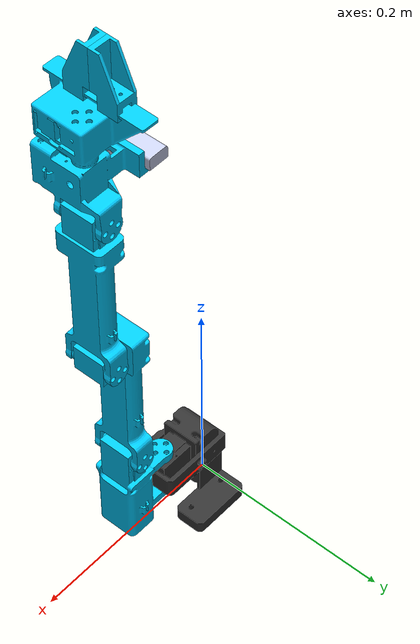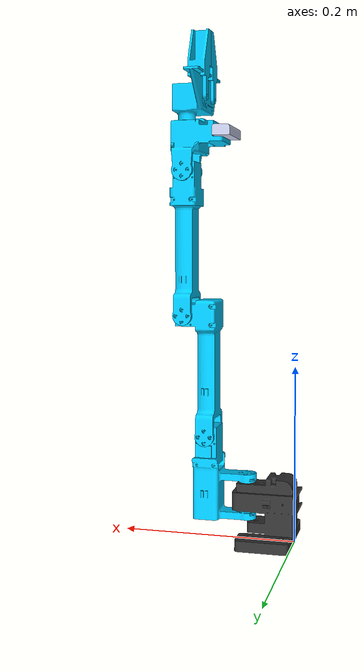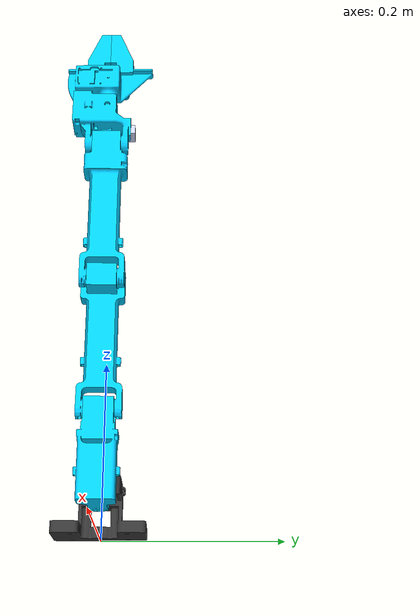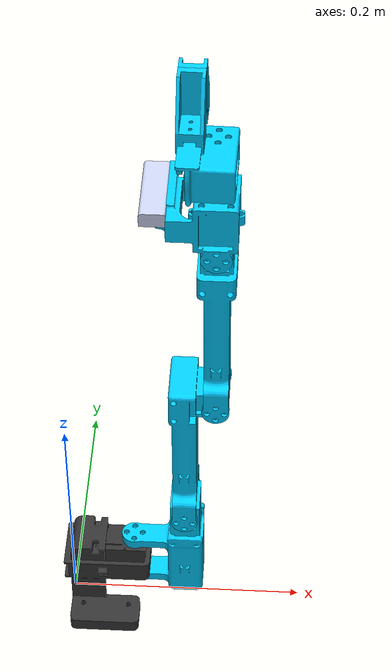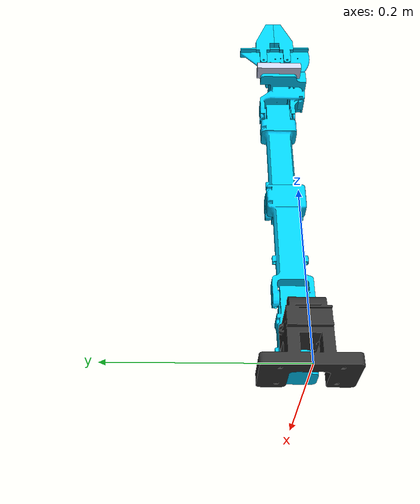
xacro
<?xml version="1.0"?>
<robot xmlns:xacro="http://www.ros.org/wiki/xacro" name="my_robot">
    <xacro:arg name="initial_positions_file" default="initial_positions.yaml" />
    <xacro:arg name="use_mock" default="true" />
    <xacro:arg name="serial_port" default="/dev/ttyUSB0" />

    <!-- Import my_robot urdf file -->
    <xacro:include filename="$(find star_arm)/urdf/star_arm.urdf.xacro" />

    <!-- Import control_xacro -->
    <xacro:include filename="my_robot.ros2_control.xacro" />

    <xacro:my_robot_ros2_control
        name="RealSystem"
        initial_positions_file="$(arg initial_positions_file)"
        use_mock="$(arg use_mock)"
        serial_port="$(arg serial_port)"/>

</robot>

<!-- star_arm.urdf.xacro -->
<robot name="my_robot" xmlns:xacro="http://www.ros.org/wiki/xacro">

  <xacro:include filename="star_arm.urdf"/>

  <xacro:property name="gripper_tcp_forward" value="0.048"/>
  <xacro:property name="optical_frame_roll" value="-1.57079632679"/>
  <xacro:property name="optical_frame_pitch" value="0.0"/>
  <xacro:property name="optical_frame_yaw" value="-1.57079632679"/>

  <!-- RealSense D435i frame aliases under the CAD camera_link mount. -->
  <link name="camera_depth_frame"/>
  <joint name="camera_depth_frame_joint" type="fixed">
    <origin xyz="0 0 0" rpy="0 0 0"/>
    <parent link="camera_link"/>
    <child link="camera_depth_frame"/>
  </joint>

  <link name="camera_depth_optical_frame"/>
  <joint name="camera_depth_optical_joint" type="fixed">
    <origin
      xyz="0 0 0"
      rpy="${optical_frame_roll} ${optical_frame_pitch} ${optical_frame_yaw}"/>
    <parent link="camera_depth_frame"/>
    <child link="camera_depth_optical_frame"/>
  </joint>

  <link name="camera_color_frame"/>
  <joint name="camera_color_frame_joint" type="fixed">
    <origin xyz="0 0 0" rpy="0 0 0"/>
    <parent link="camera_link"/>
    <child link="camera_color_frame"/>
  </joint>

  <link name="camera_color_optical_frame"/>
  <joint name="camera_color_optical_joint" type="fixed">
    <origin
      xyz="0 0 0"
      rpy="${optical_frame_roll} ${optical_frame_pitch} ${optical_frame_yaw}"/>
    <parent link="camera_color_frame"/>
    <child link="camera_color_optical_frame"/>
  </joint>

  <link name="gripper_center_link"/>
  <joint name="gripper_center_fixed_joint" type="fixed">
    <!-- Position = midpoint of end_joint1/end_joint2 origins in link5. -->
    <origin xyz="0 -0.0185 0.051" rpy="0 -1.5708 -1.5708"/>
    <parent link="link5"/>
    <child link="gripper_center_link"/>
  </joint>

  <link name="tcp_link"/>
  <joint name="tcp_fixed_joint" type="fixed">
    <!-- TCP goes forward along gripper_center +X (equivalent to link5 +Z). -->
    <origin xyz="${gripper_tcp_forward} 0 0" rpy="0 0 0"/>
    <parent link="gripper_center_link"/>
    <child link="tcp_link"/>
  </joint>

</robot>

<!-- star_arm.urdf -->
<robot name="star_arm">
  <material name="base_gray">
    <color rgba="0.2 0.2 0.2 1" />
  </material>
  <material name="arm_cyan">
    <color rgba="0.0 0.8 1.0 1" />
  </material>
  <link
    name="base_link">
    <inertial>
      <origin
        xyz="0.0275864586435609 9.16647477805559E-05 0.0324590456139455"
        rpy="0 0 0" />
      <mass
        value="0.144504554281563" />
      <inertia
        ixx="0.000121778576211421"
        ixy="4.84539490144028E-07"
        ixz="1.008250680684E-05"
        iyy="8.91115266351561E-05"
        iyz="-3.49729533338273E-12"
        izz="0.000111457566341753" />
    </inertial>
    <visual>
      <origin
        xyz="0 0 0"
        rpy="0 0 0" />
      <geometry>
        <mesh
          filename="package://star_arm/meshes/base_link.STL" />
      </geometry>
      <material
        name="base_gray">
        <color
          rgba="0.2 0.2 0.2 1" />
      </material>
    </visual>
    <collision>
      <origin
        xyz="0 0 0"
        rpy="0 0 0" />
      <geometry>
        <mesh
          filename="package://star_arm/meshes/base_link.STL" />
      </geometry>
    </collision>
  </link>
  <link
    name="link1">
    <inertial>
      <origin
        xyz="1.3453252855906E-05 0.0413059005151624 -0.0368213823397828"
        rpy="0 0 0" />
      <mass
        value="0.119500015084103" />
      <inertia
        ixx="5.33919609666398E-05"
        ixy="-5.49525330310466E-08"
        ixz="-1.15729775390099E-07"
        iyy="4.7549033361238E-05"
        iyz="1.19946244949578E-06"
        izz="3.30906436971184E-05" />
    </inertial>
    <visual>
      <origin
        xyz="0 0 0"
        rpy="0 0 0" />
      <geometry>
        <mesh
          filename="package://star_arm/meshes/link1.STL" />
      </geometry>
      <material
        name="arm_cyan">
        <color
          rgba="0.0 0.8 1.0 1" />
      </material>
    </visual>
    <collision>
      <origin
        xyz="0 0 0"
        rpy="0 0 0" />
      <geometry>
        <mesh
          filename="package://star_arm/meshes/link1.STL" />
      </geometry>
    </collision>
  </link>
  <joint
    name="joint1"
    type="revolute">
    <origin
      xyz="0.0552 0 0.03275"
      rpy="-3.1416 0 1.5708" />
    <parent
      link="base_link" />
    <child
      link="link1" />
    <axis
      xyz="0 0 -1" />
    <limit
      lower="-1.60"
      upper="1.60"
      effort="100"
      velocity="1" />
  </joint>
  <link
    name="link2">
    <inertial>
      <origin
        xyz="-0.00335921384804032 0.0945816679704448 0.0174068208732643"
        rpy="0 0 0" />
      <mass
        value="0.130914564240808" />
      <inertia
        ixx="0.00018510366056365"
        ixy="-2.57165620985463E-06"
        ixz="1.62336294405518E-07"
        iyy="2.69950008420773E-05"
        iyz="-8.45473246439525E-07"
        izz="0.00017706366922862" />
    </inertial>
    <visual>
      <origin
        xyz="0 0 0"
        rpy="0 0 0" />
      <geometry>
        <mesh
          filename="package://star_arm/meshes/link2.STL" />
      </geometry>
      <material
        name="arm_cyan">
        <color
          rgba="0.0 0.8 1.0 1" />
      </material>
    </visual>
    <collision>
      <origin
        xyz="0 0 0"
        rpy="0 0 0" />
      <geometry>
        <mesh
          filename="package://star_arm/meshes/link2.STL" />
      </geometry>
    </collision>
  </link>
  <joint
    name="joint2"
    type="revolute">
    <origin
      xyz="-0.01725 0.045 -0.087"
      rpy="-1.5708 0 -1.5708" />
    <parent
      link="link1" />
    <child
      link="link2" />
    <axis
      xyz="0 0 1" />
    <limit
      lower="-1.75"
      upper="1.75"
      effort="100"
      velocity="1" />
  </joint>
  <link
    name="link3">
    <inertial>
      <origin
        xyz="1.16788708870719E-05 0.0977016302020788 0.0172734290636942"
        rpy="0 0 0" />
      <mass
        value="0.130589042948412" />
      <inertia
        ixx="0.000172650242860473"
        ixy="1.25703414938938E-07"
        ixz="-3.67980725389453E-11"
        iyy="2.27248998780146E-05"
        iyz="1.80392268951775E-07"
        izz="0.000161491051520502" />
    </inertial>
    <visual>
      <origin
        xyz="0 0 0"
        rpy="0 0 0" />
      <geometry>
        <mesh
          filename="package://star_arm/meshes/link3.STL" />
      </geometry>
      <material
        name="arm_cyan">
        <color
          rgba="0.0 0.8 1.0 1" />
      </material>
    </visual>
    <collision>
      <origin
        xyz="0 0 0"
        rpy="0 0 0" />
      <geometry>
        <mesh
          filename="package://star_arm/meshes/link3.STL" />
      </geometry>
    </collision>
  </link>
  <joint
    name="joint3"
    type="revolute">
    <origin
      xyz="-0.026 0.1375 0"
      rpy="0 0 0" />
    <parent
      link="link2" />
    <child
      link="link3" />
    <axis
      xyz="0 0 1" />
    <limit
      lower="0"
      upper="3.00"
      effort="100"
      velocity="1" />
  </joint>
  <link
    name="link4">
    <inertial>
      <origin
        xyz="0.00631217454440636 0.0365391714692126 0.00623188114836135"
        rpy="0 0 0" />
      <mass
        value="0.0832632385047992" />
      <inertia
        ixx="3.70113589000222E-05"
        ixy="-3.43933921249897E-06"
        ixz="-1.08273760441399E-06"
        iyy="3.94373023103334E-05"
        iyz="3.88851296896288E-06"
        izz="3.23648386666315E-05" />
    </inertial>
    <visual>
      <origin
        xyz="0 0 0"
        rpy="0 0 0" />
      <geometry>
        <mesh
          filename="package://star_arm/meshes/link4.STL" />
      </geometry>
      <material
        name="arm_cyan">
        <color
          rgba="0.0 0.8 1.0 1" />
      </material>
    </visual>
    <collision>
      <origin
        xyz="0 0 0"
        rpy="0 0 0" />
      <geometry>
        <mesh
          filename="package://star_arm/meshes/link4.STL" />
      </geometry>
    </collision>
  </link>
  <joint
    name="joint4"
    type="revolute">
    <origin
      xyz="0 0.165 0"
      rpy="0 0 0" />
    <parent
      link="link3" />
    <child
      link="link4" />
    <axis
      xyz="0 0 1" />
    <limit
      lower="-1.75"
      upper="1.75"
      effort="100"
      velocity="1" />
  </joint>
  <link
    name="camera_link">
    <inertial>
      <origin
        xyz="-6.20027086588593E-05 1.72929014566171E-16 0.00960747464873753"
        rpy="0 0 0" />
      <mass
        value="0.0145747300074259" />
      <inertia
        ixx="4.81346494695206E-06"
        ixy="-7.18281463877342E-22"
        ixz="3.36765718104557E-09"
        iyy="7.1150146490885E-07"
        iyz="-8.75094153204774E-22"
        izz="4.43946569877743E-06" />
    </inertial>
    <visual>
      <origin
        xyz="0 0 0"
        rpy="0 0 0" />
      <geometry>
        <mesh
          filename="package://star_arm/meshes/camera_link.STL" />
      </geometry>
      <material
        name="camera_gray">
        <color
          rgba="0.792156862745098 0.819607843137255 0.933333333333333 1" />
      </material>
    </visual>
    <collision>
      <origin
        xyz="0 0 0"
        rpy="0 0 0" />
      <geometry>
        <mesh
          filename="package://star_arm/meshes/camera_link.STL" />
      </geometry>
    </collision>
  </link>
  <joint
    name="camera_joint"
    type="fixed">
    <origin
      xyz="0.0365 0.043 0.01725"
      rpy="1.5708 0 1.5708" />
    <parent
      link="link4" />
    <child
      link="camera_link" />
    <axis
      xyz="0 0 0" />
  </joint>
  <link
    name="link5">
    <inertial>
      <origin
        xyz="0.010232247136776 -0.00615665727623538 0.0263472886543328"
        rpy="0 0 0" />
      <mass
        value="0.0669587495744025" />
      <inertia
        ixx="1.58532114098523E-05"
        ixy="-7.47430039947888E-07"
        ixz="9.96514914296277E-07"
        iyy="3.05212909606378E-05"
        iyz="2.34382462901691E-06"
        izz="2.89349312315722E-05" />
    </inertial>
    <visual>
      <origin
        xyz="0 0 0"
        rpy="0 0 0" />
      <geometry>
        <mesh
          filename="package://star_arm/meshes/link5.STL" />
      </geometry>
      <material
        name="arm_cyan">
        <color
          rgba="0.0 0.8 1.0 1" />
      </material>
    </visual>
    <collision>
      <origin
        xyz="0 0 0"
        rpy="0 0 0" />
      <geometry>
        <mesh
          filename="package://star_arm/meshes/link5.STL" />
      </geometry>
    </collision>
  </link>
  <joint
    name="joint5"
    type="revolute">
    <origin
      xyz="0 0.05825 0.01725"
      rpy="-1.5708 1.5467 0.00" />
    <parent
      link="link4" />
    <child
      link="link5" />
    <axis
      xyz="0 0 -1" />
    <limit
      lower="-2"
      upper="2"
      effort="100"
      velocity="1" />
  </joint>
  <link
    name="end_link1">
    <inertial>
      <origin
        xyz="-0.011159382035468 -0.000634504591832008 0.0152747711052601"
        rpy="0 0 0" />
      <mass
        value="0.0120359501834581" />
      <inertia
        ixx="2.13160420215434E-06"
        ixy="-7.81459007033329E-11"
        ixz="-2.68248085654803E-07"
        iyy="2.06133033844492E-06"
        iyz="-1.20710833297542E-07"
        izz="1.08266456012266E-06" />
    </inertial>
    <visual>
      <origin
        xyz="0 0 0"
        rpy="0 0 0" />
      <geometry>
        <mesh
          filename="package://star_arm/meshes/end_link1.STL" />
      </geometry>
      <material
        name="arm_cyan">
        <color
          rgba="0.0 0.8 1.0 1" />
      </material>
    </visual>
    <collision>
      <origin
        xyz="0 0 0"
        rpy="0 0 0" />
      <geometry>
        <mesh
          filename="package://star_arm/meshes/end_link1.STL" />
      </geometry>
    </collision>
  </link>
  <joint
    name="end_joint1"
    type="prismatic">
    <origin
      xyz="0 -0.0185 0.051"
      rpy="0 0 0" />
    <parent
      link="link5" />
    <child
      link="end_link1" />
    <axis
      xyz="-1 0 0" />
    <limit
      lower="0"
      upper="0.02"
      effort="100"
      velocity="1" />
  </joint>
  <link
    name="end_link2">
    <inertial>
      <origin
        xyz="0.0111593820354694 -0.000632933870844066 0.0152747711052602"
        rpy="0 0 0" />
      <mass
        value="0.012035950183458" />
      <inertia
        ixx="2.13160420215434E-06"
        ixy="-7.81459007037075E-11"
        ixz="2.68248085654803E-07"
        iyy="2.06133033844492E-06"
        iyz="-1.20925472467206E-07"
        izz="1.08266456012266E-06" />
    </inertial>
    <visual>
      <origin
        xyz="0 0 0"
        rpy="0 0 0" />
      <geometry>
        <mesh
          filename="package://star_arm/meshes/end_link2.STL" />
      </geometry>
      <material
        name="arm_cyan">
        <color
          rgba="0.0 0.8 1.0 1" />
      </material>
    </visual>
    <collision>
      <origin
        xyz="0 0 0"
        rpy="0 0 0" />
      <geometry>
        <mesh
          filename="package://star_arm/meshes/end_link2.STL" />
      </geometry>
    </collision>
  </link>
  <joint
    name="end_joint2"
    type="prismatic">
    <origin
      xyz="0 -0.0185 0.051"
      rpy="0 0 0" />
    <parent
      link="link5" />
    <child
      link="end_link2" />
    <axis
      xyz="-1 0 0" />
    <limit
      lower="0"
      upper="0.02"
      effort="100"
      velocity="1" />
    <mimic
      joint="end_joint1"
      multiplier="-1"
      offset="0" />
  </joint>
</robot>
